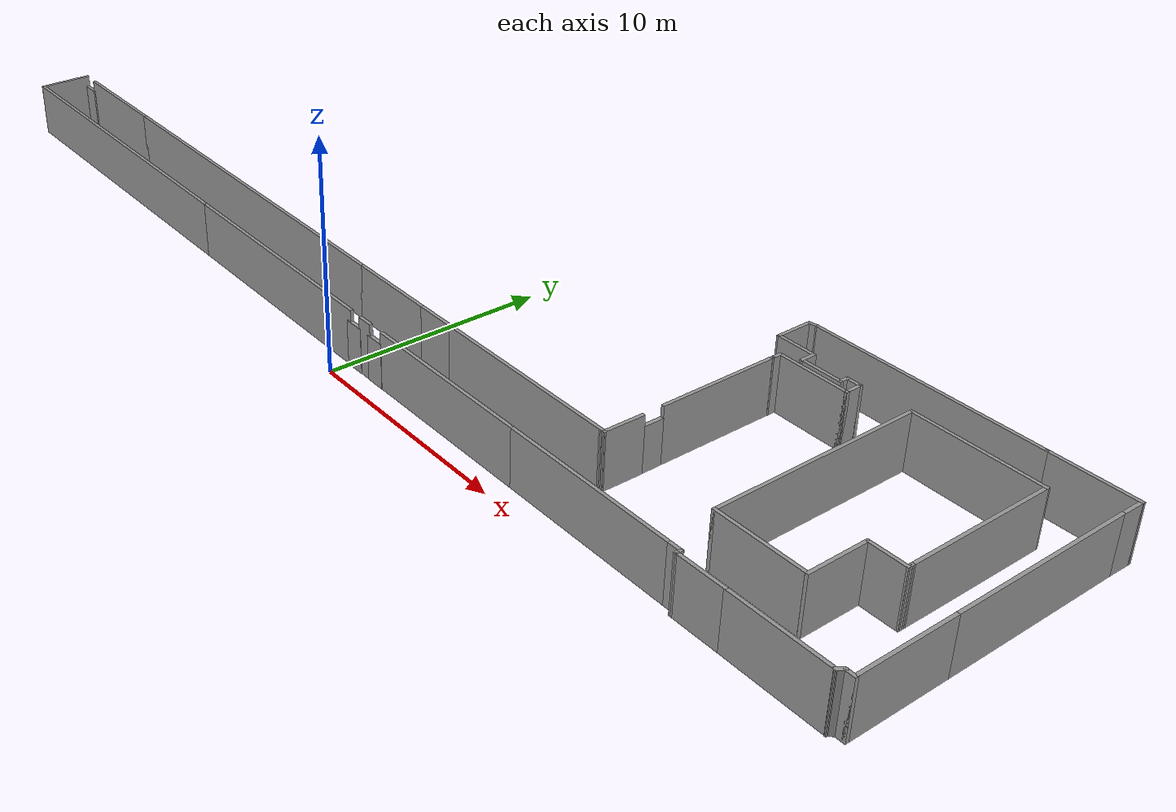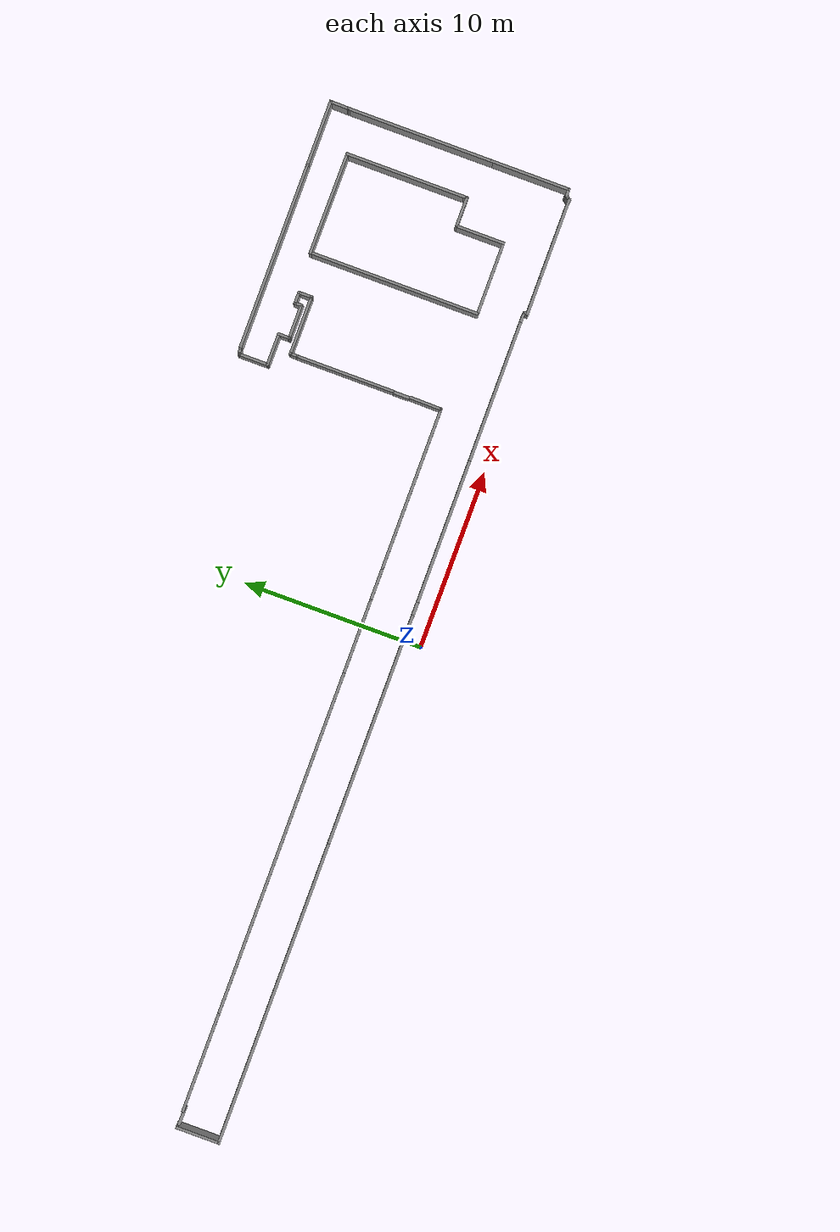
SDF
<?xml version='1.0'?>
<sdf version='1.7'>
  <model name='Acopian_4th_floor'>
    <pose>-1.40522 7.29068 0 0 -0 0</pose>
    <link name='Door_1'>
      <collision name='Door_1_Collision'>
        <geometry>
          <box>
            <size>0.9 0.17 2</size>
          </box>
        </geometry>
        <pose>0 0 1 0 -0 0</pose>
      </collision>
      <visual name='Door_1_Visual'>
        <pose>0 0 1 0 -0 0</pose>
        <geometry>
          <box>
            <size>0.9 0.17 2</size>
          </box>
        </geometry>
        <material>
          <script>
            <uri>file://media/materials/scripts/gazebo.material</uri>
            <name>Gazebo/Grey</name>
          </script>
        </material>
      </visual>
      <pose>-26.4459 -3.97925 0 0 -0 3.12878</pose>
    </link>
    <link name='Door_3'>
      <collision name='Door_3_Collision'>
        <geometry>
          <box>
            <size>0.9 0.17 2</size>
          </box>
        </geometry>
        <pose>0 0 1 0 -0 0</pose>
      </collision>
      <visual name='Door_3_Visual'>
        <pose>0 0 1 0 -0 0</pose>
        <geometry>
          <box>
            <size>0.9 0.17 2</size>
          </box>
        </geometry>
        <material>
          <script>
            <uri>file://media/materials/scripts/gazebo.material</uri>
            <name>Gazebo/Grey</name>
          </script>
        </material>
      </visual>
      <pose>3.19715 -6.31169 0 0 -0 0</pose>
    </link>
    <link name='Door_4'>
      <collision name='Door_4_Collision'>
        <geometry>
          <box>
            <size>0.9 0.17 2</size>
          </box>
        </geometry>
        <pose>0 0 1 0 -0 0</pose>
      </collision>
      <visual name='Door_4_Visual'>
        <pose>0 0 1 0 -0 0</pose>
        <geometry>
          <box>
            <size>0.9 0.17 2</size>
          </box>
        </geometry>
        <material>
          <script>
            <uri>file://media/materials/scripts/gazebo.material</uri>
            <name>Gazebo/Grey</name>
          </script>
        </material>
      </visual>
      <pose>1.78846 -6.31169 0 0 0 -3.12557</pose>
    </link>
    <link name='Door_5'>
      <collision name='Door_5_Collision'>
        <geometry>
          <box>
            <size>0.9 0.17 2</size>
          </box>
        </geometry>
        <pose>0 0 1 0 -0 0</pose>
      </collision>
      <visual name='Door_5_Visual'>
        <pose>0 0 1 0 -0 0</pose>
        <geometry>
          <box>
            <size>0.9 0.17 2</size>
          </box>
        </geometry>
        <material>
          <script>
            <uri>file://media/materials/scripts/gazebo.material</uri>
            <name>Gazebo/Grey</name>
          </script>
        </material>
      </visual>
      <pose>13.6695 -1.6948 0 0 -0 1.56521</pose>
    </link>
    <link name='Wall_100'>
      <collision name='Wall_100_Collision'>
        <geometry>
          <box>
            <size>4 0.15 2.5</size>
          </box>
        </geometry>
        <pose>0 0 1.25 0 -0 0</pose>
      </collision>
      <visual name='Wall_100_Visual'>
        <pose>0 0 1.25 0 -0 0</pose>
        <geometry>
          <box>
            <size>4 0.15 2.5</size>
          </box>
        </geometry>
        <material>
          <script>
            <uri>file://media/materials/scripts/gazebo.material</uri>
            <name>Gazebo/Grey</name>
          </script>
          <ambient>1 1 1 1</ambient>
        </material>
        <meta>
          <layer>0</layer>
        </meta>
      </visual>
      <pose>21.0165 -4.00364 0 0 -0 0</pose>
    </link>
    <link name='Wall_109'>
      <collision name='Wall_109_Collision'>
        <geometry>
          <box>
            <size>6.73 0.15 2.5</size>
          </box>
        </geometry>
        <pose>0 0 1.25 0 -0 0</pose>
      </collision>
      <visual name='Wall_109_Visual'>
        <pose>0 0 1.25 0 -0 0</pose>
        <geometry>
          <box>
            <size>6.73 0.15 2.5</size>
          </box>
        </geometry>
        <material>
          <script>
            <uri>file://media/materials/scripts/gazebo.material</uri>
            <name>Gazebo/Grey</name>
          </script>
          <ambient>1 1 1 1</ambient>
        </material>
        <meta>
          <layer>0</layer>
        </meta>
      </visual>
      <pose>24.6759 2.11636 0 0 -0 1.5708</pose>
    </link>
    <link name='Wall_110'>
      <collision name='Wall_110_Collision'>
        <geometry>
          <box>
            <size>5.73498 0.15 2.5</size>
          </box>
        </geometry>
        <pose>0 0 1.25 0 -0 0</pose>
      </collision>
      <visual name='Wall_110_Visual'>
        <pose>0 0 1.25 0 -0 0</pose>
        <geometry>
          <box>
            <size>5.73498 0.15 2.5</size>
          </box>
        </geometry>
        <material>
          <script>
            <uri>file://media/materials/scripts/gazebo.material</uri>
            <name>Gazebo/Grey</name>
          </script>
          <ambient>1 1 1 1</ambient>
        </material>
        <meta>
          <layer>0</layer>
        </meta>
      </visual>
      <pose>21.8834 5.43264 0 0 -0 3.13576</pose>
    </link>
    <link name='Wall_112'>
      <collision name='Wall_112_Collision'>
        <geometry>
          <box>
            <size>2.5 0.15 2.5</size>
          </box>
        </geometry>
        <pose>0 0 1.25 0 -0 0</pose>
      </collision>
      <visual name='Wall_112_Visual'>
        <pose>0 0 1.25 0 -0 0</pose>
        <geometry>
          <box>
            <size>2.5 0.15 2.5</size>
          </box>
        </geometry>
        <material>
          <script>
            <uri>file://media/materials/scripts/gazebo.material</uri>
            <name>Gazebo/Grey</name>
          </script>
          <ambient>1 1 1 1</ambient>
        </material>
        <meta>
          <layer>0</layer>
        </meta>
      </visual>
      <pose>-26.9811 -5.11945 0 0 -0 -1.5708</pose>
    </link>
    <link name='Wall_113'>
      <collision name='Wall_113_Collision'>
        <geometry>
          <box>
            <size>17 0.15 2.5</size>
          </box>
        </geometry>
        <pose>0 0 1.25 0 -0 0</pose>
      </collision>
      <visual name='Wall_113_Visual'>
        <pose>0 0 1.25 0 -0 0</pose>
        <geometry>
          <box>
            <size>17 0.15 2.5</size>
          </box>
        </geometry>
        <material>
          <script>
            <uri>file://media/materials/scripts/gazebo.material</uri>
            <name>Gazebo/Grey</name>
          </script>
          <ambient>1 1 1 1</ambient>
        </material>
        <meta>
          <layer>0</layer>
        </meta>
      </visual>
      <pose>-18.5561 -6.29445 0 0 -0 0</pose>
    </link>
    <link name='Wall_115'>
      <collision name='Wall_115_Collision'>
        <geometry>
          <box>
            <size>11.75 0.15 2.5</size>
          </box>
        </geometry>
        <pose>0 0 1.25 0 -0 0</pose>
      </collision>
      <visual name='Wall_115_Visual'>
        <pose>0 0 1.25 0 -0 0</pose>
        <geometry>
          <box>
            <size>11.75 0.15 2.5</size>
          </box>
        </geometry>
        <material>
          <script>
            <uri>file://media/materials/scripts/gazebo.material</uri>
            <name>Gazebo/Grey</name>
          </script>
          <ambient>1 1 1 1</ambient>
        </material>
        <meta>
          <layer>0</layer>
        </meta>
      </visual>
      <pose>-4.33112 -6.29445 0 0 -0 0</pose>
    </link>
    <link name='Wall_117'>
      <collision name='Wall_117_Collision'>
        <geometry>
          <box>
            <size>1.99521 0.15 2.5</size>
          </box>
        </geometry>
        <pose>0 0 1.25 0 -0 0</pose>
      </collision>
      <visual name='Wall_117_Visual'>
        <pose>0 0 1.25 0 -0 0</pose>
        <geometry>
          <box>
            <size>1.99521 0.15 2.5</size>
          </box>
        </geometry>
        <material>
          <script>
            <uri>file://media/materials/scripts/gazebo.material</uri>
            <name>Gazebo/Grey</name>
          </script>
          <ambient>1 1 1 1</ambient>
        </material>
        <meta>
          <layer>0</layer>
        </meta>
      </visual>
      <pose>3.75771 -3.92942 0 0 -0 0</pose>
    </link>
    <link name='Wall_120'>
      <collision name='Wall_120_Collision'>
        <geometry>
          <box>
            <size>19.25 0.15 2.5</size>
          </box>
        </geometry>
        <pose>0 0 1.25 0 -0 0</pose>
      </collision>
      <visual name='Wall_120_Visual'>
        <pose>0 0 1.25 0 -0 0</pose>
        <geometry>
          <box>
            <size>19.25 0.15 2.5</size>
          </box>
        </geometry>
        <material>
          <script>
            <uri>file://media/materials/scripts/gazebo.material</uri>
            <name>Gazebo/Grey</name>
          </script>
          <ambient>1 1 1 1</ambient>
        </material>
        <meta>
          <layer>0</layer>
        </meta>
      </visual>
      <pose>-10.8807 -3.92942 0 0 -0 0</pose>
    </link>
    <link name='Wall_123'>
      <collision name='Wall_123_Collision'>
        <geometry>
          <box>
            <size>3.75 0.15 2.5</size>
          </box>
        </geometry>
        <pose>0 0 1.25 0 -0 0</pose>
      </collision>
      <visual name='Wall_123_Visual'>
        <pose>0 0 1.25 0 -0 0</pose>
        <geometry>
          <box>
            <size>3.75 0.15 2.5</size>
          </box>
        </geometry>
        <material>
          <script>
            <uri>file://media/materials/scripts/gazebo.material</uri>
            <name>Gazebo/Grey</name>
          </script>
          <ambient>1 1 1 1</ambient>
        </material>
        <meta>
          <layer>0</layer>
        </meta>
      </visual>
      <pose>25.1799 7.20166 0 0 -0 0</pose>
    </link>
    <link name='Wall_124'>
      <collision name='Wall_124_Collision'>
        <geometry>
          <box>
            <size>1.17586 0.15 2.5</size>
          </box>
        </geometry>
        <pose>0 0 1.25 0 -0 0</pose>
      </collision>
      <visual name='Wall_124_Visual'>
        <pose>0 0 1.25 0 -0 0</pose>
        <geometry>
          <box>
            <size>1.17586 0.15 2.5</size>
          </box>
        </geometry>
        <material>
          <script>
            <uri>file://media/materials/scripts/gazebo.material</uri>
            <name>Gazebo/Grey</name>
          </script>
          <ambient>1 1 1 1</ambient>
        </material>
        <meta>
          <layer>0</layer>
        </meta>
      </visual>
      <pose>26.9714 6.6888 0 0 -0 -1.58742</pose>
    </link>
    <link name='Wall_13'>
      <collision name='Wall_13_Collision'>
        <geometry>
          <box>
            <size>4.25 0.15 2.5</size>
          </box>
        </geometry>
        <pose>0 0 1.25 0 -0 0</pose>
      </collision>
      <visual name='Wall_13_Visual'>
        <pose>0 0 1.25 0 -0 0</pose>
        <geometry>
          <box>
            <size>4.25 0.15 2.5</size>
          </box>
        </geometry>
        <material>
          <script>
            <uri>file://media/materials/scripts/gazebo.material</uri>
            <name>Gazebo/Grey</name>
          </script>
          <ambient>1 1 1 1</ambient>
        </material>
        <meta>
          <layer>0</layer>
        </meta>
      </visual>
      <pose>0.785104 -3.92942 0 0 -0 0</pose>
    </link>
    <link name='Wall_135'>
      <collision name='Wall_135_Collision'>
        <geometry>
          <box>
            <size>4.5 0.15 2.5</size>
          </box>
        </geometry>
        <pose>0 0 1.25 0 -0 0</pose>
      </collision>
      <visual name='Wall_135_Visual'>
        <pose>0 0 1.25 0 -0 0</pose>
        <geometry>
          <box>
            <size>4.5 0.15 2.5</size>
          </box>
        </geometry>
        <material>
          <script>
            <uri>file://media/materials/scripts/gazebo.material</uri>
            <name>Gazebo/Grey</name>
          </script>
          <ambient>1 1 1 1</ambient>
        </material>
        <meta>
          <layer>0</layer>
        </meta>
      </visual>
      <pose>26.9628 -4.09906 0 0 -0 -1.5708</pose>
    </link>
    <link name='Wall_137'>
      <collision name='Wall_137_Collision'>
        <geometry>
          <box>
            <size>4.5 0.15 2.5</size>
          </box>
        </geometry>
        <pose>0 0 1.25 0 -0 0</pose>
      </collision>
      <visual name='Wall_137_Visual'>
        <pose>0 0 1.25 0 -0 0</pose>
        <geometry>
          <box>
            <size>4.5 0.15 2.5</size>
          </box>
        </geometry>
        <material>
          <script>
            <uri>file://media/materials/scripts/gazebo.material</uri>
            <name>Gazebo/Grey</name>
          </script>
          <ambient>1 1 1 1</ambient>
        </material>
        <meta>
          <layer>0</layer>
        </meta>
      </visual>
      <pose>24.2649 -6.48097 0 0 -0 0</pose>
    </link>
    <link name='Wall_139'>
      <collision name='Wall_139_Collision'>
        <geometry>
          <box>
            <size>0.5 0.15 2.5</size>
          </box>
        </geometry>
        <pose>0 0 1.25 0 -0 0</pose>
      </collision>
      <visual name='Wall_139_Visual'>
        <pose>0 0 1.25 0 -0 0</pose>
        <geometry>
          <box>
            <size>0.5 0.15 2.5</size>
          </box>
        </geometry>
        <material>
          <script>
            <uri>file://media/materials/scripts/gazebo.material</uri>
            <name>Gazebo/Grey</name>
          </script>
          <ambient>1 1 1 1</ambient>
        </material>
        <meta>
          <layer>0</layer>
        </meta>
      </visual>
      <pose>26.7878 -6.27406 0 0 -0 3.14159</pose>
    </link>
    <link name='Wall_140'>
      <collision name='Wall_140_Collision'>
        <geometry>
          <box>
            <size>0.419697 0.15 2.5</size>
          </box>
        </geometry>
        <pose>0 0 1.25 0 -0 0</pose>
      </collision>
      <visual name='Wall_140_Visual'>
        <pose>0 0 1.25 0 -0 0</pose>
        <geometry>
          <box>
            <size>0.419697 0.15 2.5</size>
          </box>
        </geometry>
        <material>
          <script>
            <uri>file://media/materials/scripts/gazebo.material</uri>
            <name>Gazebo/Grey</name>
          </script>
          <ambient>1 1 1 1</ambient>
        </material>
        <meta>
          <layer>0</layer>
        </meta>
      </visual>
      <pose>26.5263 -6.37751 0 0 -0 -2.26712</pose>
    </link>
    <link name='Wall_146'>
      <collision name='Wall_146_Collision'>
        <geometry>
          <box>
            <size>1.73685 0.15 2.5</size>
          </box>
        </geometry>
        <pose>0 0 1.25 0 -0 0</pose>
      </collision>
      <visual name='Wall_146_Visual'>
        <pose>0 0 1.25 0 -0 0</pose>
        <geometry>
          <box>
            <size>1.73685 0.15 2.5</size>
          </box>
        </geometry>
        <material>
          <script>
            <uri>file://media/materials/scripts/gazebo.material</uri>
            <name>Gazebo/Grey</name>
          </script>
          <ambient>1 1 1 1</ambient>
        </material>
        <meta>
          <layer>0</layer>
        </meta>
      </visual>
      <pose>23.8747 -1.34653 0 0 -0 0.001792</pose>
    </link>
    <link name='Wall_147'>
      <collision name='Wall_147_Collision'>
        <geometry>
          <box>
            <size>0.321636 0.15 2.5</size>
          </box>
        </geometry>
        <pose>0 0 1.25 0 -0 0</pose>
      </collision>
      <visual name='Wall_147_Visual'>
        <pose>0 0 1.25 0 -0 0</pose>
        <geometry>
          <box>
            <size>0.321636 0.15 2.5</size>
          </box>
        </geometry>
        <material>
          <script>
            <uri>file://media/materials/scripts/gazebo.material</uri>
            <name>Gazebo/Grey</name>
          </script>
          <ambient>1 1 1 1</ambient>
        </material>
        <meta>
          <layer>0</layer>
        </meta>
      </visual>
      <pose>24.672 -1.25937 0 0 -0 1.52589</pose>
    </link>
    <link name='Wall_15'>
      <collision name='Wall_15_Collision'>
        <geometry>
          <box>
            <size>9 0.15 2.5</size>
          </box>
        </geometry>
        <pose>0 0 1.25 0 -0 0</pose>
      </collision>
      <visual name='Wall_15_Visual'>
        <pose>0 0 1.25 0 -0 0</pose>
        <geometry>
          <box>
            <size>9 0.15 2.5</size>
          </box>
        </geometry>
        <material>
          <script>
            <uri>file://media/materials/scripts/gazebo.material</uri>
            <name>Gazebo/Grey</name>
          </script>
          <ambient>1 1 1 1</ambient>
        </material>
        <meta>
          <layer>0</layer>
        </meta>
      </visual>
      <pose>9.10531 -3.92942 0 0 -0 0</pose>
    </link>
    <link name='Wall_150'>
      <collision name='Wall_150_Collision'>
        <geometry>
          <box>
            <size>2.8 0.15 2.5</size>
          </box>
        </geometry>
        <pose>0 0 1.25 0 -0 0</pose>
      </collision>
      <visual name='Wall_150_Visual'>
        <pose>0 0 1.25 0 -0 0</pose>
        <geometry>
          <box>
            <size>2.8 0.15 2.5</size>
          </box>
        </geometry>
        <material>
          <script>
            <uri>file://media/materials/scripts/gazebo.material</uri>
            <name>Gazebo/Grey</name>
          </script>
          <ambient>1 1 1 1</ambient>
        </material>
        <meta>
          <layer>0</layer>
        </meta>
      </visual>
      <pose>23.0813 -2.67295 0 0 -0 -1.5708</pose>
    </link>
    <link name='Wall_18'>
      <collision name='Wall_18_Collision'>
        <geometry>
          <box>
            <size>0.284656 0.15 2.5</size>
          </box>
        </geometry>
        <pose>0 0 1.25 0 -0 0</pose>
      </collision>
      <visual name='Wall_18_Visual'>
        <pose>0 0 1.25 0 -0 0</pose>
        <geometry>
          <box>
            <size>0.284656 0.15 2.5</size>
          </box>
        </geometry>
        <material>
          <script>
            <uri>file://media/materials/scripts/gazebo.material</uri>
            <name>Gazebo/Grey</name>
          </script>
          <ambient>1 1 1 1</ambient>
        </material>
        <meta>
          <layer>0</layer>
        </meta>
      </visual>
      <pose>13.5978 -3.92705 0 0 -0 0.035132</pose>
    </link>
    <link name='Wall_19'>
      <collision name='Wall_19_Collision'>
        <geometry>
          <box>
            <size>1.859 0.15 2.5</size>
          </box>
        </geometry>
        <pose>0 0 1.25 0 -0 0</pose>
      </collision>
      <visual name='Wall_19_Visual'>
        <pose>0 0 1.25 0 -0 0</pose>
        <geometry>
          <box>
            <size>1.859 0.15 2.5</size>
          </box>
        </geometry>
        <material>
          <script>
            <uri>file://media/materials/scripts/gazebo.material</uri>
            <name>Gazebo/Grey</name>
          </script>
          <ambient>1 1 1 1</ambient>
        </material>
        <meta>
          <layer>0</layer>
        </meta>
      </visual>
      <pose>13.6772 -3.07068 0 0 -0 1.55675</pose>
    </link>
    <link name='Wall_22'>
      <collision name='Wall_22_Collision'>
        <geometry>
          <box>
            <size>5.5 0.15 2.5</size>
          </box>
        </geometry>
        <pose>0 0 1.25 0 -0 0</pose>
      </collision>
      <visual name='Wall_22_Visual'>
        <pose>0 0 1.25 0 -0 0</pose>
        <geometry>
          <box>
            <size>5.5 0.15 2.5</size>
          </box>
        </geometry>
        <material>
          <script>
            <uri>file://media/materials/scripts/gazebo.material</uri>
            <name>Gazebo/Grey</name>
          </script>
          <ambient>1 1 1 1</ambient>
        </material>
        <meta>
          <layer>0</layer>
        </meta>
      </visual>
      <pose>13.6746 1.49542 0 0 -0 1.5708</pose>
    </link>
    <link name='Wall_27'>
      <collision name='Wall_27_Collision'>
        <geometry>
          <box>
            <size>0.15 0.15 2.5</size>
          </box>
        </geometry>
        <pose>0 0 1.25 0 -0 0</pose>
      </collision>
      <visual name='Wall_27_Visual'>
        <pose>0 0 1.25 0 -0 0</pose>
        <geometry>
          <box>
            <size>0.15 0.15 2.5</size>
          </box>
        </geometry>
        <material>
          <script>
            <uri>file://media/materials/scripts/gazebo.material</uri>
            <name>Gazebo/Grey</name>
          </script>
          <ambient>1 1 1 1</ambient>
        </material>
        <meta>
          <layer>0</layer>
        </meta>
      </visual>
      <pose>13.6804 4.17042 0 0 -0 0</pose>
    </link>
    <link name='Wall_28'>
      <collision name='Wall_28_Collision'>
        <geometry>
          <box>
            <size>0.564504 0.15 2.5</size>
          </box>
        </geometry>
        <pose>0 0 1.25 0 -0 0</pose>
      </collision>
      <visual name='Wall_28_Visual'>
        <pose>0 0 1.25 0 -0 0</pose>
        <geometry>
          <box>
            <size>0.564504 0.15 2.5</size>
          </box>
        </geometry>
        <material>
          <script>
            <uri>file://media/materials/scripts/gazebo.material</uri>
            <name>Gazebo/Grey</name>
          </script>
          <ambient>1 1 1 1</ambient>
        </material>
        <meta>
          <layer>0</layer>
        </meta>
      </visual>
      <pose>13.6832 4.37765 0 0 -0 1.557</pose>
    </link>
    <link name='Wall_29'>
      <collision name='Wall_29_Collision'>
        <geometry>
          <box>
            <size>3.25 0.15 2.5</size>
          </box>
        </geometry>
        <pose>0 0 1.25 0 -0 0</pose>
      </collision>
      <visual name='Wall_29_Visual'>
        <pose>0 0 1.25 0 -0 0</pose>
        <geometry>
          <box>
            <size>3.25 0.15 2.5</size>
          </box>
        </geometry>
        <material>
          <script>
            <uri>file://media/materials/scripts/gazebo.material</uri>
            <name>Gazebo/Grey</name>
          </script>
          <ambient>1 1 1 1</ambient>
        </material>
        <meta>
          <layer>0</layer>
        </meta>
      </visual>
      <pose>15.2361 4.58488 0 0 -0 0</pose>
    </link>
    <link name='Wall_3'>
      <collision name='Wall_3_Collision'>
        <geometry>
          <box>
            <size>5.75 0.15 2.5</size>
          </box>
        </geometry>
        <pose>0 0 1.25 0 -0 0</pose>
      </collision>
      <visual name='Wall_3_Visual'>
        <pose>0 0 1.25 0 -0 0</pose>
        <geometry>
          <box>
            <size>5.75 0.15 2.5</size>
          </box>
        </geometry>
        <material>
          <script>
            <uri>file://media/materials/scripts/gazebo.material</uri>
            <name>Gazebo/Grey</name>
          </script>
          <ambient>1 1 1 1</ambient>
        </material>
        <meta>
          <layer>0</layer>
        </meta>
      </visual>
      <pose>-23.2307 -3.92942 0 0 -0 0</pose>
    </link>
    <link name='Wall_30'>
      <collision name='Wall_30_Collision'>
        <geometry>
          <box>
            <size>0.15 0.15 2.5</size>
          </box>
        </geometry>
        <pose>0 0 1.25 0 -0 0</pose>
      </collision>
      <visual name='Wall_30_Visual'>
        <pose>0 0 1.25 0 -0 0</pose>
        <geometry>
          <box>
            <size>0.15 0.15 2.5</size>
          </box>
        </geometry>
        <material>
          <script>
            <uri>file://media/materials/scripts/gazebo.material</uri>
            <name>Gazebo/Grey</name>
          </script>
          <ambient>1 1 1 1</ambient>
        </material>
        <meta>
          <layer>0</layer>
        </meta>
      </visual>
      <pose>16.7861 4.58488 0 0 -0 0</pose>
    </link>
    <link name='Wall_31'>
      <collision name='Wall_31_Collision'>
        <geometry>
          <box>
            <size>0.25 0.15 2.5</size>
          </box>
        </geometry>
        <pose>0 0 1.25 0 -0 0</pose>
      </collision>
      <visual name='Wall_31_Visual'>
        <pose>0 0 1.25 0 -0 0</pose>
        <geometry>
          <box>
            <size>0.25 0.15 2.5</size>
          </box>
        </geometry>
        <material>
          <script>
            <uri>file://media/materials/scripts/gazebo.material</uri>
            <name>Gazebo/Grey</name>
          </script>
          <ambient>1 1 1 1</ambient>
        </material>
        <meta>
          <layer>0</layer>
        </meta>
      </visual>
      <pose>16.8361 4.58488 0 0 -0 0</pose>
    </link>
    <link name='Wall_32'>
      <collision name='Wall_32_Collision'>
        <geometry>
          <box>
            <size>0.75 0.15 2.5</size>
          </box>
        </geometry>
        <pose>0 0 1.25 0 -0 0</pose>
      </collision>
      <visual name='Wall_32_Visual'>
        <pose>0 0 1.25 0 -0 0</pose>
        <geometry>
          <box>
            <size>0.75 0.15 2.5</size>
          </box>
        </geometry>
        <material>
          <script>
            <uri>file://media/materials/scripts/gazebo.material</uri>
            <name>Gazebo/Grey</name>
          </script>
          <ambient>1 1 1 1</ambient>
        </material>
        <meta>
          <layer>0</layer>
        </meta>
      </visual>
      <pose>16.8861 4.88488 0 0 -0 1.5708</pose>
    </link>
    <link name='Wall_33'>
      <collision name='Wall_33_Collision'>
        <geometry>
          <box>
            <size>0.25 0.15 2.5</size>
          </box>
        </geometry>
        <pose>0 0 1.25 0 -0 0</pose>
      </collision>
      <visual name='Wall_33_Visual'>
        <pose>0 0 1.25 0 -0 0</pose>
        <geometry>
          <box>
            <size>0.25 0.15 2.5</size>
          </box>
        </geometry>
        <material>
          <script>
            <uri>file://media/materials/scripts/gazebo.material</uri>
            <name>Gazebo/Grey</name>
          </script>
          <ambient>1 1 1 1</ambient>
        </material>
        <meta>
          <layer>0</layer>
        </meta>
      </visual>
      <pose>16.8861 5.23488 0 0 -0 1.5708</pose>
    </link>
    <link name='Wall_34'>
      <collision name='Wall_34_Collision'>
        <geometry>
          <box>
            <size>0.75 0.15 2.5</size>
          </box>
        </geometry>
        <pose>0 0 1.25 0 -0 0</pose>
      </collision>
      <visual name='Wall_34_Visual'>
        <pose>0 0 1.25 0 -0 0</pose>
        <geometry>
          <box>
            <size>0.75 0.15 2.5</size>
          </box>
        </geometry>
        <material>
          <script>
            <uri>file://media/materials/scripts/gazebo.material</uri>
            <name>Gazebo/Grey</name>
          </script>
          <ambient>1 1 1 1</ambient>
        </material>
        <meta>
          <layer>0</layer>
        </meta>
      </visual>
      <pose>16.5861 5.28488 0 0 -0 3.14159</pose>
    </link>
    <link name='Wall_35'>
      <collision name='Wall_35_Collision'>
        <geometry>
          <box>
            <size>0.5 0.15 2.5</size>
          </box>
        </geometry>
        <pose>0 0 1.25 0 -0 0</pose>
      </collision>
      <visual name='Wall_35_Visual'>
        <pose>0 0 1.25 0 -0 0</pose>
        <geometry>
          <box>
            <size>0.5 0.15 2.5</size>
          </box>
        </geometry>
        <material>
          <script>
            <uri>file://media/materials/scripts/gazebo.material</uri>
            <name>Gazebo/Grey</name>
          </script>
          <ambient>1 1 1 1</ambient>
        </material>
        <meta>
          <layer>0</layer>
        </meta>
      </visual>
      <pose>16.2861 5.10988 0 0 -0 -1.5708</pose>
    </link>
    <link name='Wall_36'>
      <collision name='Wall_36_Collision'>
        <geometry>
          <box>
            <size>2 0.15 2.5</size>
          </box>
        </geometry>
        <pose>0 0 1.25 0 -0 0</pose>
      </collision>
      <visual name='Wall_36_Visual'>
        <pose>0 0 1.25 0 -0 0</pose>
        <geometry>
          <box>
            <size>2 0.15 2.5</size>
          </box>
        </geometry>
        <material>
          <script>
            <uri>file://media/materials/scripts/gazebo.material</uri>
            <name>Gazebo/Grey</name>
          </script>
          <ambient>1 1 1 1</ambient>
        </material>
        <meta>
          <layer>0</layer>
        </meta>
      </visual>
      <pose>15.3611 4.93488 0 0 -0 3.14159</pose>
    </link>
    <link name='Wall_37'>
      <collision name='Wall_37_Collision'>
        <geometry>
          <box>
            <size>0.15 0.15 2.5</size>
          </box>
        </geometry>
        <pose>0 0 1.25 0 -0 0</pose>
      </collision>
      <visual name='Wall_37_Visual'>
        <pose>0 0 1.25 0 -0 0</pose>
        <geometry>
          <box>
            <size>0.15 0.15 2.5</size>
          </box>
        </geometry>
        <material>
          <script>
            <uri>file://media/materials/scripts/gazebo.material</uri>
            <name>Gazebo/Grey</name>
          </script>
          <ambient>1 1 1 1</ambient>
        </material>
        <meta>
          <layer>0</layer>
        </meta>
      </visual>
      <pose>14.4361 4.93488 0 0 -0 0</pose>
    </link>
    <link name='Wall_38'>
      <collision name='Wall_38_Collision'>
        <geometry>
          <box>
            <size>0.744392 0.15 2.5</size>
          </box>
        </geometry>
        <pose>0 0 1.25 0 -0 0</pose>
      </collision>
      <visual name='Wall_38_Visual'>
        <pose>0 0 1.25 0 -0 0</pose>
        <geometry>
          <box>
            <size>0.744392 0.15 2.5</size>
          </box>
        </geometry>
        <material>
          <script>
            <uri>file://media/materials/scripts/gazebo.material</uri>
            <name>Gazebo/Grey</name>
          </script>
          <ambient>1 1 1 1</ambient>
        </material>
        <meta>
          <layer>0</layer>
        </meta>
      </visual>
      <pose>14.4389 5.23202 0 0 -0 1.56118</pose>
    </link>
    <link name='Wall_39'>
      <collision name='Wall_39_Collision'>
        <geometry>
          <box>
            <size>1.86752 0.15 2.5</size>
          </box>
        </geometry>
        <pose>0 0 1.25 0 -0 0</pose>
      </collision>
      <visual name='Wall_39_Visual'>
        <pose>0 0 1.25 0 -0 0</pose>
        <geometry>
          <box>
            <size>1.86752 0.15 2.5</size>
          </box>
        </geometry>
        <material>
          <script>
            <uri>file://media/materials/scripts/gazebo.material</uri>
            <name>Gazebo/Grey</name>
          </script>
          <ambient>1 1 1 1</ambient>
        </material>
        <meta>
          <layer>0</layer>
        </meta>
      </visual>
      <pose>13.5773 5.53187 0 0 -0 3.13844</pose>
    </link>
    <link name='Wall_46'>
      <collision name='Wall_46_Collision'>
        <geometry>
          <box>
            <size>10.5 0.15 2.5</size>
          </box>
        </geometry>
        <pose>0 0 1.25 0 -0 0</pose>
      </collision>
      <visual name='Wall_46_Visual'>
        <pose>0 0 1.25 0 -0 0</pose>
        <geometry>
          <box>
            <size>10.5 0.15 2.5</size>
          </box>
        </geometry>
        <material>
          <script>
            <uri>file://media/materials/scripts/gazebo.material</uri>
            <name>Gazebo/Grey</name>
          </script>
          <ambient>1 1 1 1</ambient>
        </material>
        <meta>
          <layer>0</layer>
        </meta>
      </visual>
      <pose>18.2049 7.20166 0 0 -0 3.14159</pose>
    </link>
    <link name='Wall_48'>
      <collision name='Wall_48_Collision'>
        <geometry>
          <box>
            <size>0.15 0.15 2.5</size>
          </box>
        </geometry>
        <pose>0 0 1.25 0 -0 0</pose>
      </collision>
      <visual name='Wall_48_Visual'>
        <pose>0 0 1.25 0 -0 0</pose>
        <geometry>
          <box>
            <size>0.15 0.15 2.5</size>
          </box>
        </geometry>
        <material>
          <script>
            <uri>file://media/materials/scripts/gazebo.material</uri>
            <name>Gazebo/Grey</name>
          </script>
          <ambient>1 1 1 1</ambient>
        </material>
        <meta>
          <layer>0</layer>
        </meta>
      </visual>
      <pose>13.0324 7.20166 0 0 -0 0</pose>
    </link>
    <link name='Wall_53'>
      <collision name='Wall_53_Collision'>
        <geometry>
          <box>
            <size>1.75 0.15 2.5</size>
          </box>
        </geometry>
        <pose>0 0 1.25 0 -0 0</pose>
      </collision>
      <visual name='Wall_53_Visual'>
        <pose>0 0 1.25 0 -0 0</pose>
        <geometry>
          <box>
            <size>1.75 0.15 2.5</size>
          </box>
        </geometry>
        <material>
          <script>
            <uri>file://media/materials/scripts/gazebo.material</uri>
            <name>Gazebo/Grey</name>
          </script>
          <ambient>1 1 1 1</ambient>
        </material>
        <meta>
          <layer>0</layer>
        </meta>
      </visual>
      <pose>12.7186 6.33458 0 0 -0 1.5708</pose>
    </link>
    <link name='Wall_55'>
      <collision name='Wall_55_Collision'>
        <geometry>
          <box>
            <size>0.470878 0.15 2.5</size>
          </box>
        </geometry>
        <pose>0 0 1.25 0 -0 0</pose>
      </collision>
      <visual name='Wall_55_Visual'>
        <pose>0 0 1.25 0 -0 0</pose>
        <geometry>
          <box>
            <size>0.470878 0.15 2.5</size>
          </box>
        </geometry>
        <material>
          <script>
            <uri>file://media/materials/scripts/gazebo.material</uri>
            <name>Gazebo/Grey</name>
          </script>
          <ambient>1 1 1 1</ambient>
        </material>
        <meta>
          <layer>0</layer>
        </meta>
      </visual>
      <pose>12.8755 7.16812 0 0 -0 0.210605</pose>
    </link>
    <link name='Wall_58'>
      <collision name='Wall_58_Collision'>
        <geometry>
          <box>
            <size>8.25 0.15 2.5</size>
          </box>
        </geometry>
        <pose>0 0 1.25 0 -0 0</pose>
      </collision>
      <visual name='Wall_58_Visual'>
        <pose>0 0 1.25 0 -0 0</pose>
        <geometry>
          <box>
            <size>8.25 0.15 2.5</size>
          </box>
        </geometry>
        <material>
          <script>
            <uri>file://media/materials/scripts/gazebo.material</uri>
            <name>Gazebo/Grey</name>
          </script>
          <ambient>1 1 1 1</ambient>
        </material>
        <meta>
          <layer>0</layer>
        </meta>
      </visual>
      <pose>26.9628 2.12594 0 0 -0 -1.5708</pose>
    </link>
    <link name='Wall_73'>
      <collision name='Wall_73_Collision'>
        <geometry>
          <box>
            <size>2.23971 0.15 2.5</size>
          </box>
        </geometry>
        <pose>0 0 1.25 0 -0 0</pose>
      </collision>
      <visual name='Wall_73_Visual'>
        <pose>0 0 1.25 0 -0 0</pose>
        <geometry>
          <box>
            <size>2.23971 0.15 2.5</size>
          </box>
        </geometry>
        <material>
          <script>
            <uri>file://media/materials/scripts/gazebo.material</uri>
            <name>Gazebo/Grey</name>
          </script>
          <ambient>1 1 1 1</ambient>
        </material>
        <meta>
          <layer>0</layer>
        </meta>
      </visual>
      <pose>21.045 -6.48582 0 0 -0 -3.13695</pose>
    </link>
    <link name='Wall_77'>
      <collision name='Wall_77_Collision'>
        <geometry>
          <box>
            <size>0.305 0.15 2.5</size>
          </box>
        </geometry>
        <pose>0 0 1.25 0 -0 0</pose>
      </collision>
      <visual name='Wall_77_Visual'>
        <pose>0 0 1.25 0 -0 0</pose>
        <geometry>
          <box>
            <size>0.305 0.15 2.5</size>
          </box>
        </geometry>
        <material>
          <script>
            <uri>file://media/materials/scripts/gazebo.material</uri>
            <name>Gazebo/Grey</name>
          </script>
          <ambient>1 1 1 1</ambient>
        </material>
        <meta>
          <layer>0</layer>
        </meta>
      </visual>
      <pose>20.0002 -6.41318 0 0 -0 1.5708</pose>
    </link>
    <link name='Wall_84'>
      <collision name='Wall_84_Collision'>
        <geometry>
          <box>
            <size>8 0.15 2.5</size>
          </box>
        </geometry>
        <pose>0 0 1.25 0 -0 0</pose>
      </collision>
      <visual name='Wall_84_Visual'>
        <pose>0 0 1.25 0 -0 0</pose>
        <geometry>
          <box>
            <size>8 0.15 2.5</size>
          </box>
        </geometry>
        <material>
          <script>
            <uri>file://media/materials/scripts/gazebo.material</uri>
            <name>Gazebo/Grey</name>
          </script>
          <ambient>1 1 1 1</ambient>
        </material>
        <meta>
          <layer>0</layer>
        </meta>
      </visual>
      <pose>7.609 -6.30913 0 0 -0 3.14159</pose>
    </link>
    <link name='Wall_86'>
      <collision name='Wall_86_Collision'>
        <geometry>
          <box>
            <size>8 0.15 2.5</size>
          </box>
        </geometry>
        <pose>0 0 1.25 0 -0 0</pose>
      </collision>
      <visual name='Wall_86_Visual'>
        <pose>0 0 1.25 0 -0 0</pose>
        <geometry>
          <box>
            <size>8 0.15 2.5</size>
          </box>
        </geometry>
        <material>
          <script>
            <uri>file://media/materials/scripts/gazebo.material</uri>
            <name>Gazebo/Grey</name>
          </script>
          <ambient>1 1 1 1</ambient>
        </material>
        <meta>
          <layer>0</layer>
        </meta>
      </visual>
      <pose>15.459 -6.30913 0 0 -0 0</pose>
    </link>
    <link name='Wall_87'>
      <collision name='Wall_87_Collision'>
        <geometry>
          <box>
            <size>0.75 0.15 2.5</size>
          </box>
        </geometry>
        <pose>0 0 1.25 0 -0 0</pose>
      </collision>
      <visual name='Wall_87_Visual'>
        <pose>0 0 1.25 0 -0 0</pose>
        <geometry>
          <box>
            <size>0.75 0.15 2.5</size>
          </box>
        </geometry>
        <material>
          <script>
            <uri>file://media/materials/scripts/gazebo.material</uri>
            <name>Gazebo/Grey</name>
          </script>
          <ambient>1 1 1 1</ambient>
        </material>
        <meta>
          <layer>0</layer>
        </meta>
      </visual>
      <pose>19.684 -6.30913 0 0 -0 0</pose>
    </link>
    <link name='Wall_91'>
      <collision name='Wall_91_Collision'>
        <geometry>
          <box>
            <size>0.75 0.15 2.5</size>
          </box>
        </geometry>
        <pose>0 0 1.25 0 -0 0</pose>
      </collision>
      <visual name='Wall_91_Visual'>
        <pose>0 0 1.25 0 -0 0</pose>
        <geometry>
          <box>
            <size>0.75 0.15 2.5</size>
          </box>
        </geometry>
        <material>
          <script>
            <uri>file://media/materials/scripts/gazebo.material</uri>
            <name>Gazebo/Grey</name>
          </script>
          <ambient>1 1 1 1</ambient>
        </material>
        <meta>
          <layer>0</layer>
        </meta>
      </visual>
      <pose>2.52324 -6.303 0 0 -0 3.14159</pose>
    </link>
    <link name='Wall_99'>
      <collision name='Wall_99_Collision'>
        <geometry>
          <box>
            <size>9.5 0.15 2.5</size>
          </box>
        </geometry>
        <pose>0 0 1.25 0 -0 0</pose>
      </collision>
      <visual name='Wall_99_Visual'>
        <pose>0 0 1.25 0 -0 0</pose>
        <geometry>
          <box>
            <size>9.5 0.15 2.5</size>
          </box>
        </geometry>
        <material>
          <script>
            <uri>file://media/materials/scripts/gazebo.material</uri>
            <name>Gazebo/Grey</name>
          </script>
          <ambient>1 1 1 1</ambient>
        </material>
        <meta>
          <layer>0</layer>
        </meta>
      </visual>
      <pose>19.0915 0.671359 0 0 -0 -1.5708</pose>
    </link>
    <static>1</static>
  </model>
</sdf>
